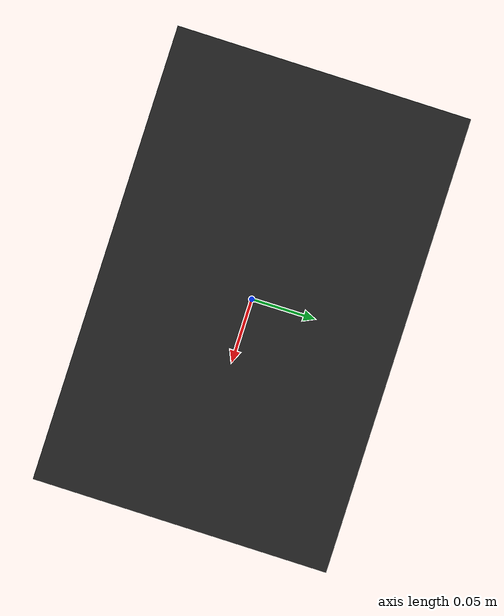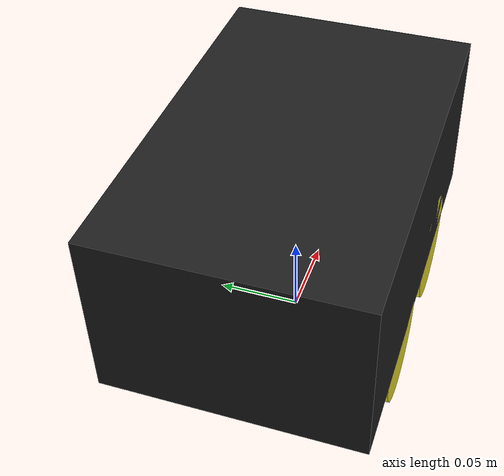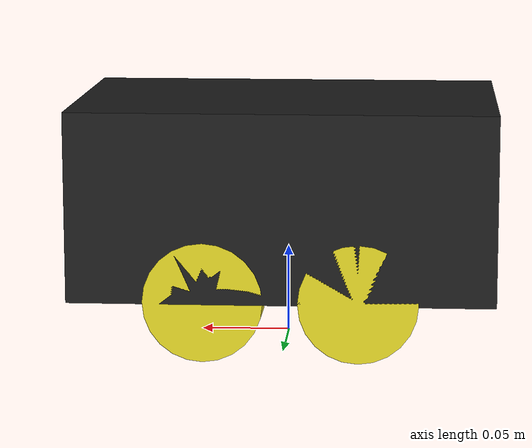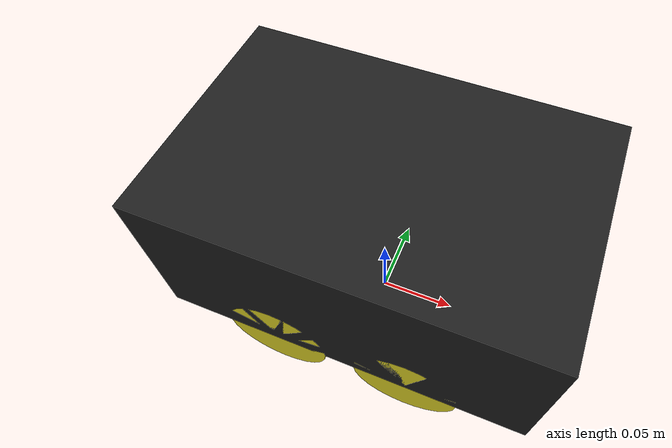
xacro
<?xml version="1.0"?>
<robot xmlns:xacro="http://www.ros.org/wiki/xacro">

    <xacro:property name="base_length" value="0.235" />
    <xacro:property name="base_width" value="0.152" />
    <xacro:property name="base_height" value="0.105" />
    <xacro:property name="wheel_radius" value="0.033" />
    <xacro:property name="wheel_length" value="0.026" />

    <!-- Measured wheel centre locations for Elegoo Smart Robot Car Kit v4.0 -->
    <xacro:property name="wheel_center_from_ends" value="0.075" />
    <xacro:property name="wheel_x_front" value="${base_length/2.0 - wheel_center_from_ends}" />
    <xacro:property name="wheel_x_rear"  value="${-base_length/2.0 + wheel_center_from_ends}" />
    <xacro:property name="wheel_y" value="${base_width/2.0 - wheel_length/2.0}" />

    <xacro:property name="base_clearance" value="0.016" />
    <xacro:property name="wheel_z" value="${wheel_radius - base_clearance}" />
    <link name="base_footprint" />

    <link name="base_link">
        <visual>
            <geometry>
                <box size="${base_length} ${base_width} ${base_height}" />
            </geometry>
            <origin xyz="0 0 ${(base_height / 2.0) + 0.016}" rpy="0 0 0" />
            <material name="black" />
        </visual>

        <xacro:box_inertia m="5.0" x="${base_length}" y="${base_width}" z="${base_height}"
                           o_xyz="0 0 ${(base_height / 2.0) + 0.016}" o_rpy="0 0 0" />

        <collision>
            <geometry>
                <box size="${base_length} ${base_width} ${base_height}" />
            </geometry>
            <origin xyz="0 0 ${(base_height / 2.0) + 0.016}" rpy="0 0 0" />
        </collision>
    </link>

    <xacro:macro name="wheel_link" params="name">
        <link name="${name}">
            <visual>
                <geometry>
                    <cylinder radius="${wheel_radius}" length="${wheel_length}" />
                </geometry>
                <origin xyz="0 0 0" rpy="${pi / 2.0} 0 0" />
                <material name="yellow" />
            </visual>

            <xacro:cylinder_inertia m="1.0" r="${wheel_radius}" l="${wheel_length}"
                                    o_xyz="0 0 0" o_rpy="${pi / 2.0} 0 0" />

            <collision>
                <geometry>
                    <sphere radius="${wheel_radius}"/>
                </geometry>
                <origin xyz="0 0 0" rpy="0 0 0" />
            </collision>

        </link>
    </xacro:macro>

    <xacro:wheel_link name="front_left_wheel_link" />
    <xacro:wheel_link name="front_right_wheel_link" />
    <xacro:wheel_link name="rear_left_wheel_link" />
    <xacro:wheel_link name="rear_right_wheel_link" />

    <joint name="base_joint" type="fixed">
        <parent link="base_footprint" />
        <child link="base_link" />
        <origin xyz="0 0 ${base_clearance}" rpy="0 0 0"/>
    </joint>

    <joint name="front_left_wheel_joint" type="continuous">
        <parent link="base_link" />
        <child link="front_left_wheel_link" />
        <origin xyz="${wheel_x_front} ${wheel_y} ${wheel_z}" rpy="0 0 0" />
        <axis xyz="0 1 0" />
    </joint>

    <joint name="front_right_wheel_joint" type="continuous">
        <parent link="base_link" />
        <child link="front_right_wheel_link" />
        <origin xyz="${wheel_x_front} -${wheel_y} ${wheel_z}" rpy="0 0 0" />
        <axis xyz="0 1 0" />
    </joint>

    <joint name="rear_left_wheel_joint" type="continuous">
        <parent link="base_link" />
        <child link="rear_left_wheel_link" />
        <origin xyz="${wheel_x_rear}  ${wheel_y} ${wheel_z}" rpy="0 0 0" />
        <axis xyz="0 1 0" />
    </joint>

    <joint name="rear_right_wheel_joint" type="continuous">
        <parent link="base_link" />
        <child link="rear_right_wheel_link" />
        <origin xyz="${wheel_x_rear} -${wheel_y} ${wheel_z}" rpy="0 0 0" />
        <axis xyz="0 1 0" />
    </joint>

</robot>
